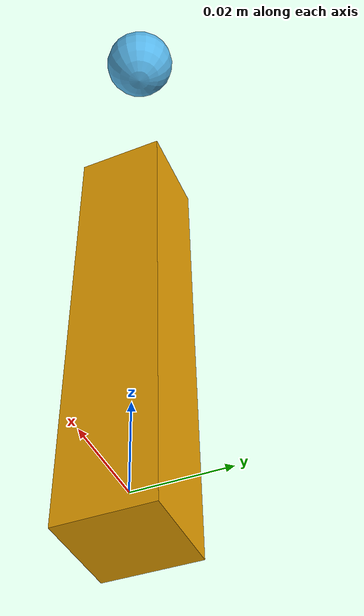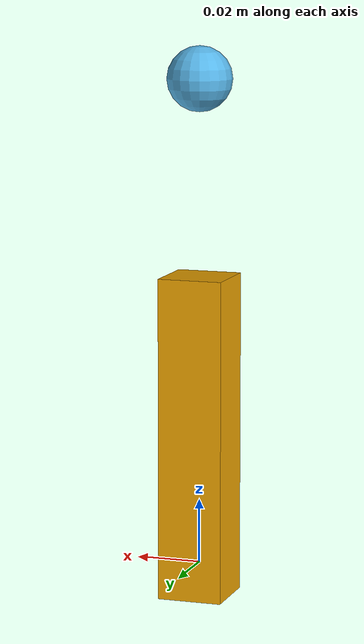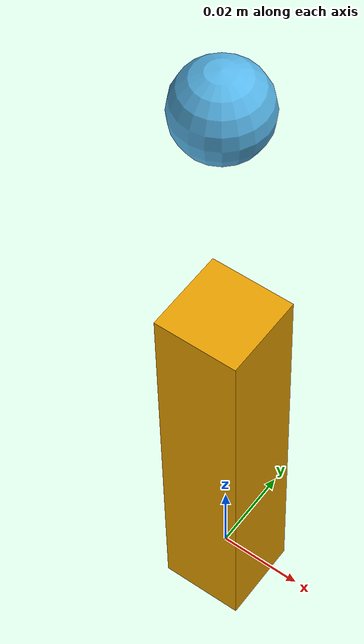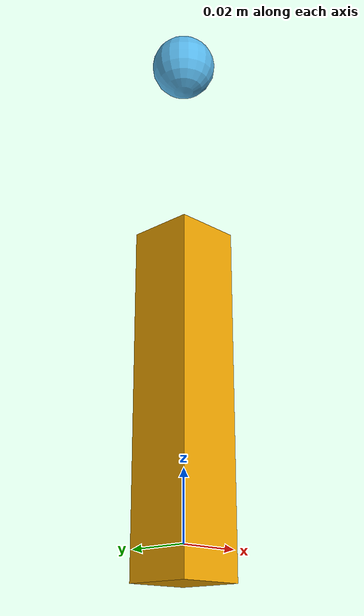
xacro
<?xml version="1.0" ?>
<robot
  name="tool">
   <link name="tool">
        <visual>
            <origin rpy="0 0 0" xyz="0.0 0 0.04"/>
            <geometry>
                <box size = "0.02 0.02 0.1"/>
            </geometry>
        </visual>
        <collision>
          <origin xyz="0 0 0" rpy="0 0 0.04"/>
            <geometry>
                 <box size = "0.04 0.04 0.1"/>
            </geometry>
        </collision>

        <inertial>
         <mass value="0.05"/>
         <inertia ixx="0.001" ixy="0.0" ixz="0.0" iyy="0.00001" iyz="0.0" izz="0.00001"/>
        </inertial>
    </link>

     <joint name="tool_mass" type="fixed">
        <axis xyz="0.1 0 0" />
        <limit effort="2000.0" lower="-3.14" upper="3.14" velocity="0.5" />
        <origin rpy="0 0 0" xyz="0.0 0 0.05"/>
        <parent link="tool"/>
        <child link="point_mass"/>
    </joint>

        <link name="point_mass">
        <visual>
            <origin rpy="0 0 0" xyz="0.0 0.0 0.1"/>
            <geometry>
                <sphere radius = "0.01"/>
            </geometry>
        </visual>
        <collision>
          <origin xyz="0.0 0 0.1" rpy="0 0 0"/>
            <geometry>
                 <sphere  radius = "0.01"/>
            </geometry>
        </collision>

        <inertial>
         <mass value="0.02"/>
         <inertia ixx="0.00001" ixy="0.0" ixz="0.0" iyy="0.00001" iyz="0.0" izz="0.0001"/>
        </inertial>
    </link>

</robot>
